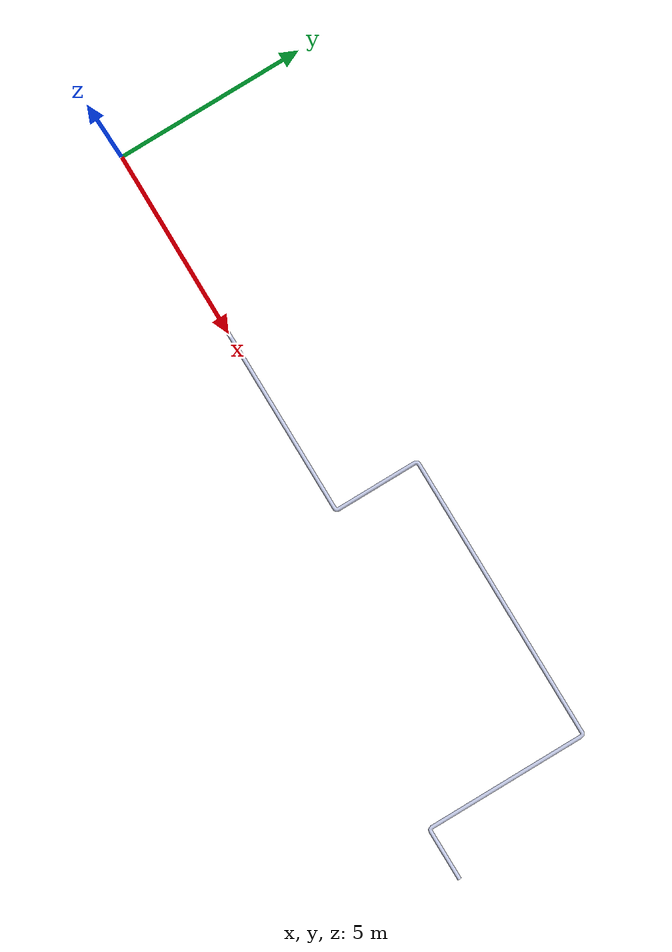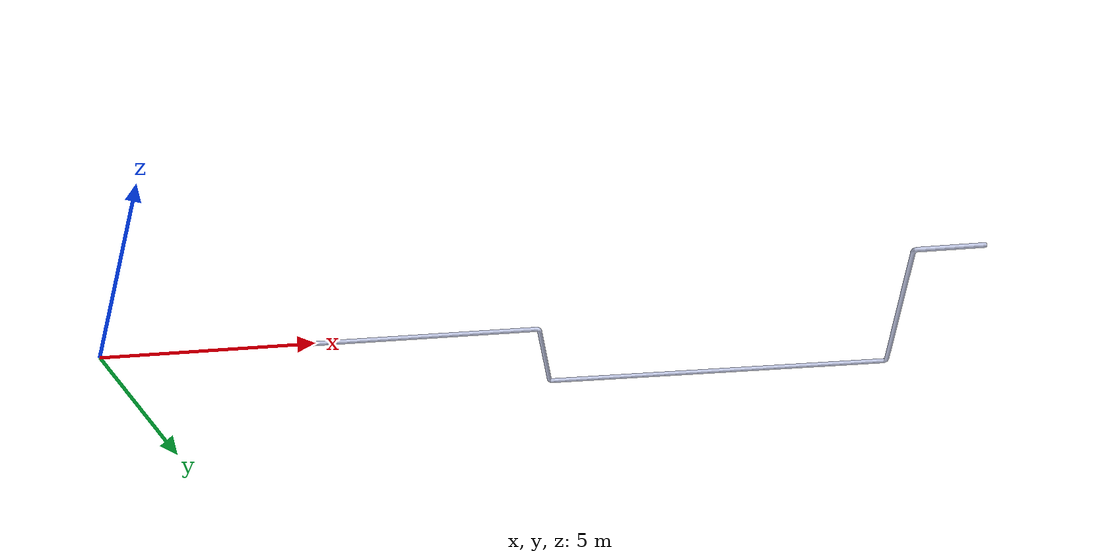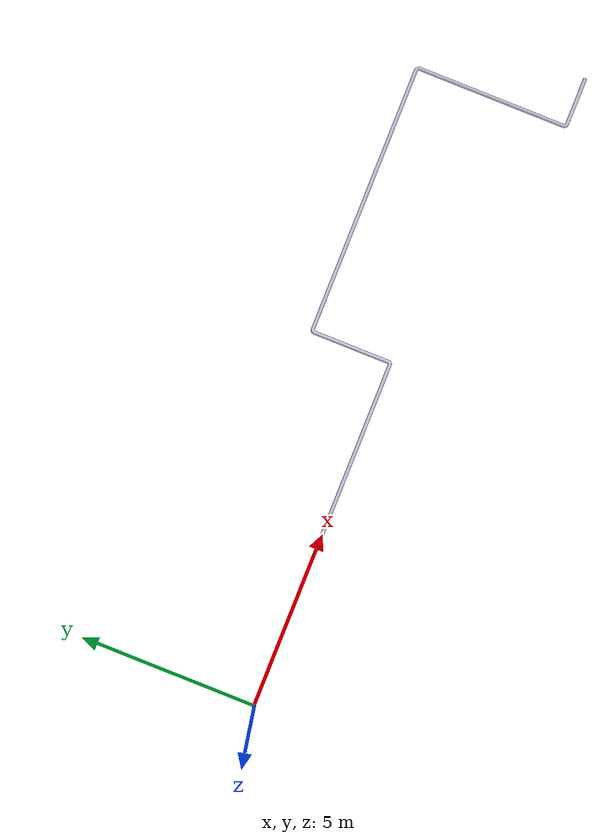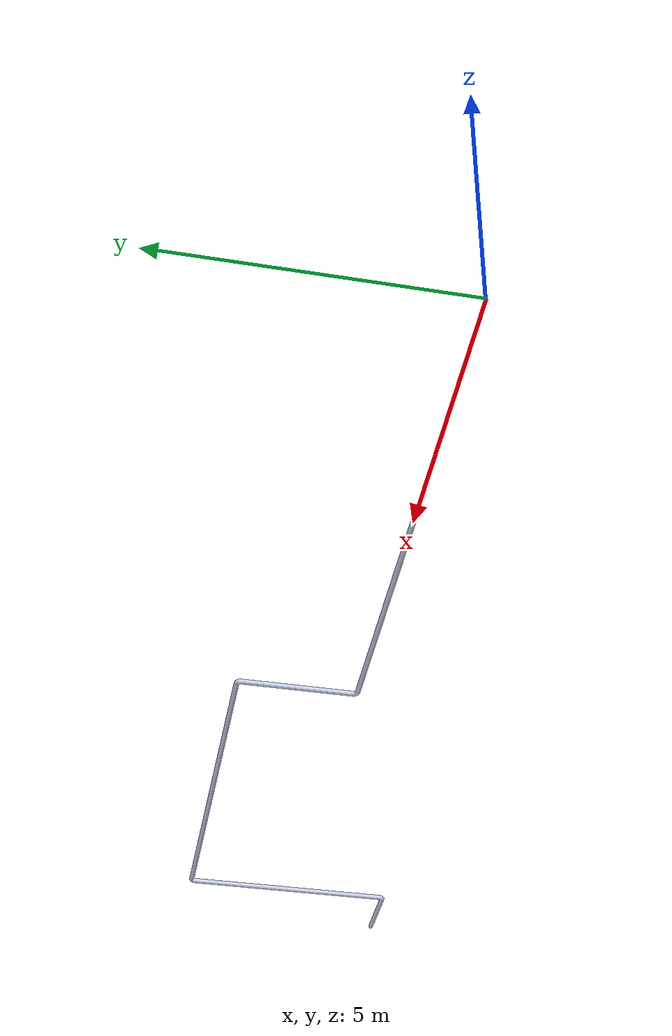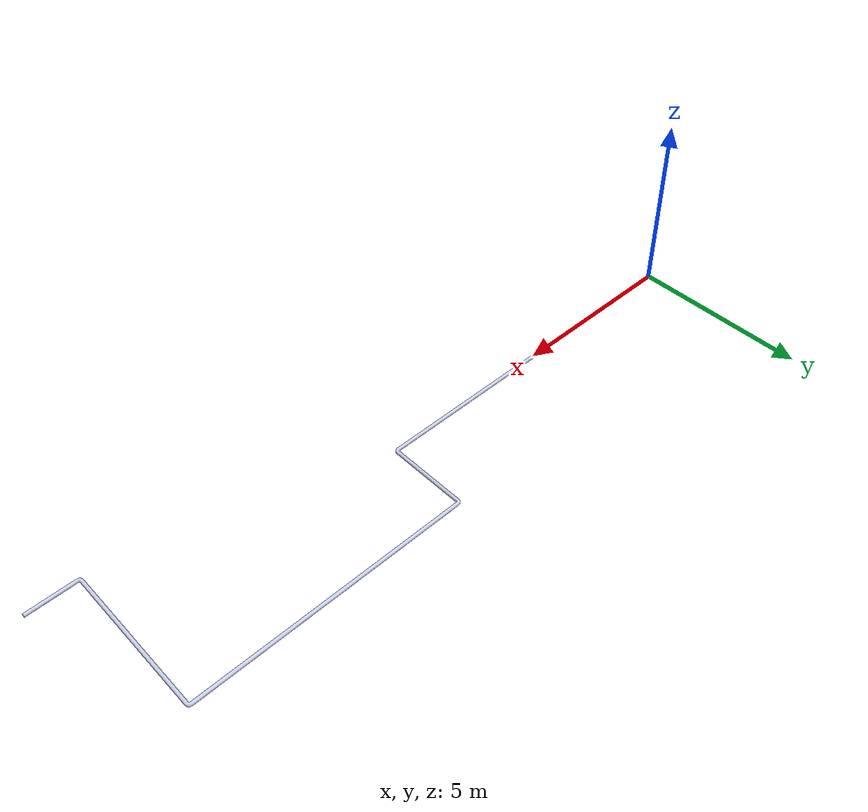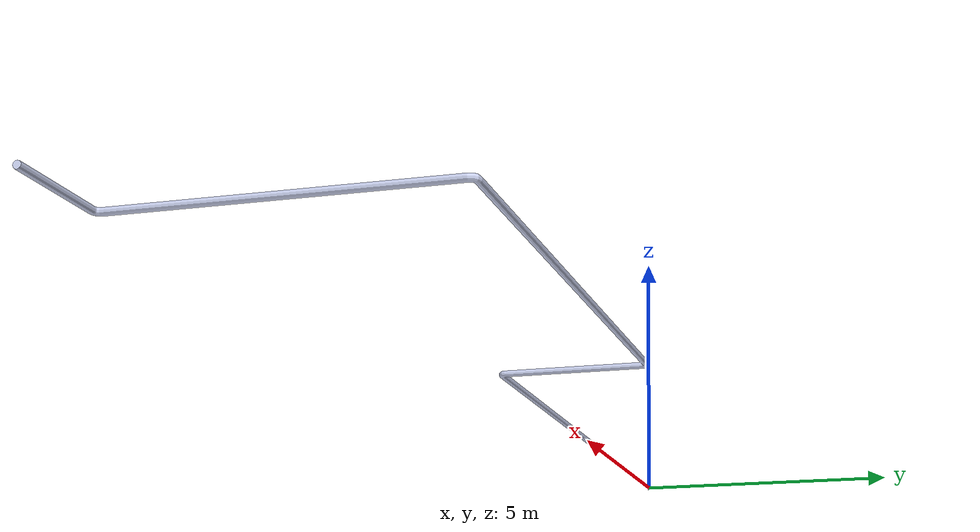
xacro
<?xml version="1.0"?>
<robot
  name="pipe" xmlns:xacro="http://www.ros.org/wiki/xacro">

  <xacro:include filename="$(find pipe)/urdf/materials.xacro" />
  <xacro:include filename="$(find pipe)/urdf/pipe.gazebo" />
  <link
    name="base_link">
    <inertial>
      <origin
        xyz="10.945 -1.3483E-19 -0.69719"
        rpy="0 0 0" />
      <mass
        value="201.03" />
      <inertia
        ixx="347.73"
        ixy="1.7205E-16"
        ixz="243.15"
        iyy="6737.2"
        iyz="1.2402E-16"
        izz="6389.7" />
    </inertial>
    <visual>
      <origin
        xyz="0 0 0"
        rpy="0 0 0" />
      <geometry>
        <mesh
          filename="package://pipe/meshes/base_link.STL" />
      </geometry>
      <material
        name="">
        <color
          rgba="0.79216 0.81961 0.93333 1" />
      </material>
    </visual>
    <collision>
      <origin
        xyz="0 0 0"
        rpy="0 0 0" />
      <geometry>
        <mesh
          filename="package://pipe/meshes/base_link.STL" />
      </geometry>
    </collision>
  </link>
</robot>
